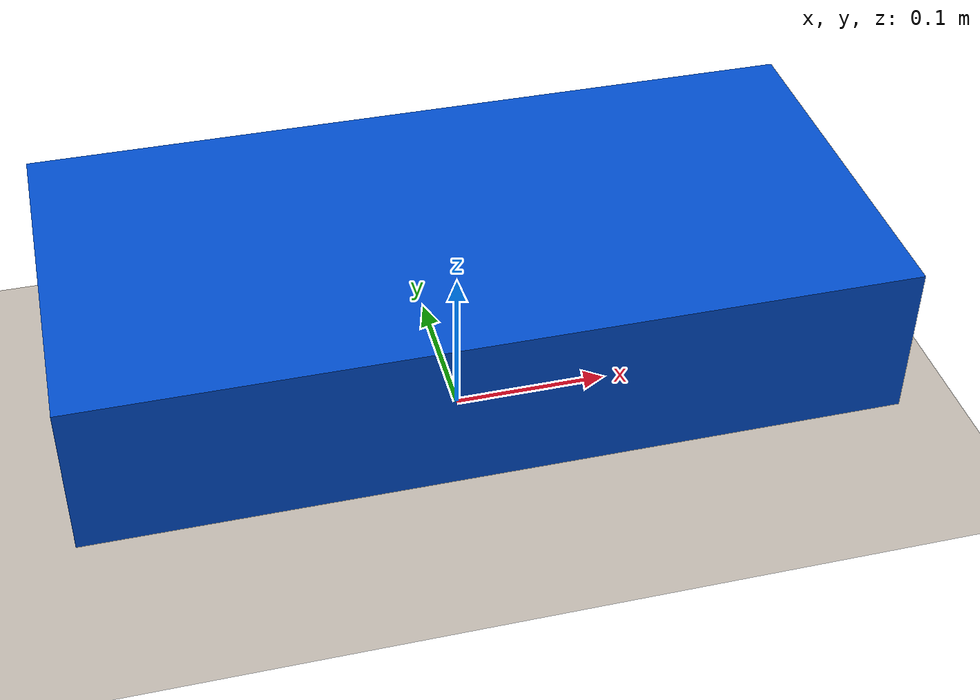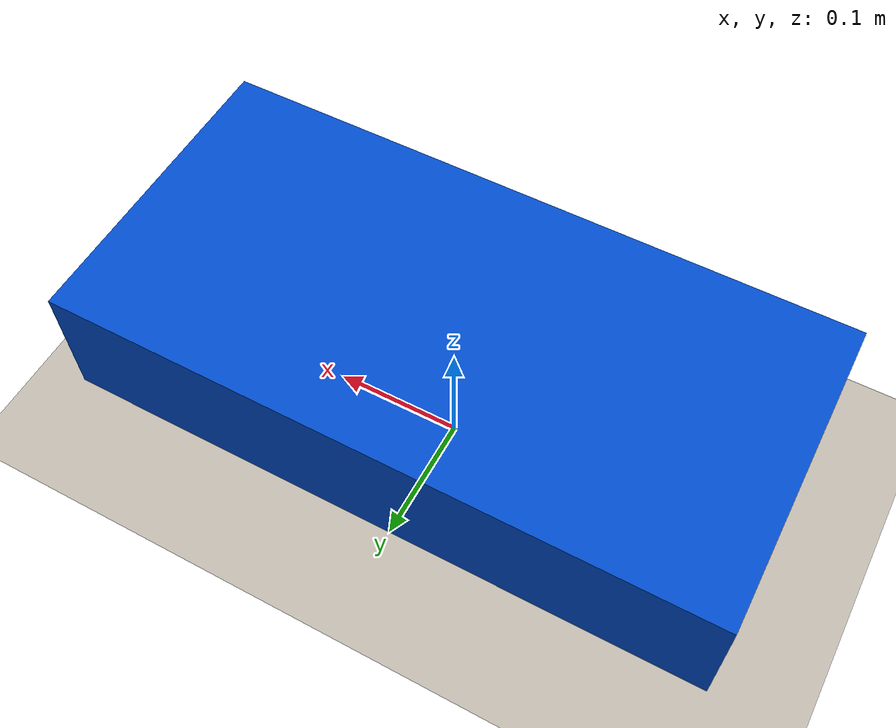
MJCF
<mujoco model="mushr_toy">
    <compiler angle="degree" coordinate="local"/>
    <option timestep="0.02" gravity="0 0 0" integrator="Euler"/>

    <asset>
        <texture name="ground" type="checker" width="512" height="512" rgb1="0.8 0.8 0.8" rgb2="0.6 0.6 0.6"/>
        <material name="mat_ground" texture="ground"/>
    </asset>

    <worldbody>
        <geom name="plane" type="plane" pos="0 0 0" size="10 10 0.1" material="mat_ground"/>
        <body name="car" pos="0 0 0.1">
            <joint name="x" type="slide" axis="1 0 0"/>
            <joint name="y" type="slide" axis="0 1 0"/>
            <joint name="yaw" type="hinge" axis="0 0 1"/>
            <geom name="chassis" type="box" pos="0 0 0" size="0.25 0.12 0.05" rgba="0 0.3 0.8 1"/>
        </body>
    </worldbody>

    <actuator>
        <motor name="drive" joint="x" gear="1"/>
        <motor name="steer" joint="yaw" gear="0.5"/>
    </actuator>
</mujoco>
